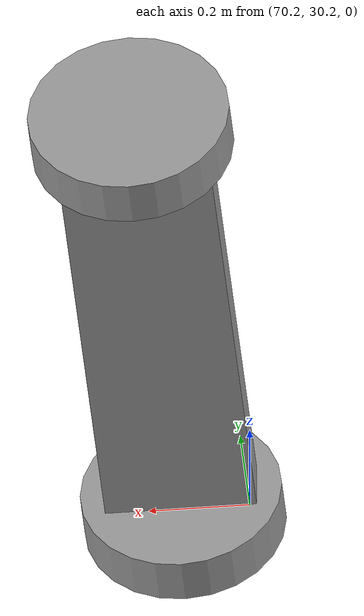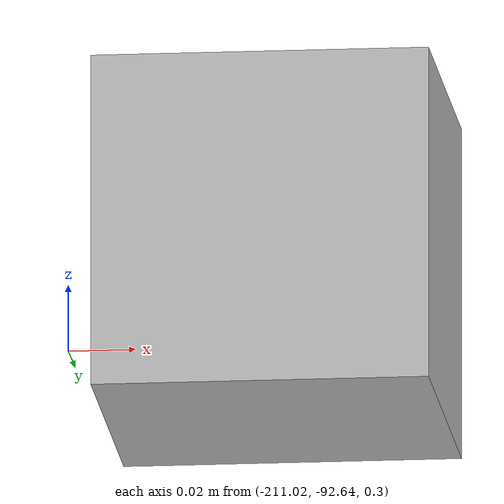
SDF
<?xml version='1.0'?>
<sdf version='1.6'>
  <model name='Robot2'>
    <link name='link_0'>
      <pose frame=''>70.3213 30.8613 -0.097072 0 -0 0</pose>
      <inertial>
        <mass>1</mass>
        <inertia>
          <ixx>0.166667</ixx>
          <ixy>0</ixy>
          <ixz>0</ixz>
          <iyy>0.166667</iyy>
          <iyz>0</iyz>
          <izz>0.166667</izz>
        </inertia>
        <pose frame=''>0 0 0 0 -0 0</pose>
      </inertial>
      <gravity>1</gravity>
      <self_collide>0</self_collide>
      <kinematic>0</kinematic>
      <visual name='visual'>
        <pose frame=''>0 0 0 0 -0 0</pose>
        <geometry>
          <box>
            <size>0.3 1 0.1</size>
          </box>
        </geometry>
        <material>
          <lighting>1</lighting>
          <script>
            <uri>file://media/materials/scripts/gazebo.material</uri>
            <name>Gazebo/Grey</name>
          </script>
          <ambient>0.3 0.3 0.3 1</ambient>
          <diffuse>0.7 0.7 0.7 1</diffuse>
          <specular>0.01 0.01 0.01 1</specular>
          <emissive>0 0 0 1</emissive>
          <shader type='vertex'>
            <normal_map>__default__</normal_map>
          </shader>
        </material>
        <transparency>0</transparency>
        <cast_shadows>1</cast_shadows>
      </visual>
      <collision name='collision'>
        <laser_retro>0</laser_retro>
        <max_contacts>10</max_contacts>
        <pose frame=''>0 0 0 0 -0 0</pose>
        <geometry>
          <box>
            <size>0.3 1 0.1</size>
          </box>
        </geometry>
        <surface>
          <friction>
            <ode>
              <mu>1</mu>
              <mu2>1</mu2>
              <fdir1>0 0 0</fdir1>
              <slip1>0</slip1>
              <slip2>0</slip2>
            </ode>
            <torsional>
              <coefficient>1</coefficient>
              <patch_radius>0</patch_radius>
              <surface_radius>0</surface_radius>
              <use_patch_radius>1</use_patch_radius>
              <ode>
                <slip>0</slip>
              </ode>
            </torsional>
          </friction>
          <bounce>
            <restitution_coefficient>0</restitution_coefficient>
            <threshold>1e+06</threshold>
          </bounce>
          <contact>
            <collide_without_contact>0</collide_without_contact>
            <collide_without_contact_bitmask>1</collide_without_contact_bitmask>
            <collide_bitmask>1</collide_bitmask>
            <ode>
              <soft_cfm>0</soft_cfm>
              <soft_erp>0.2</soft_erp>
              <kp>1e+13</kp>
              <kd>1</kd>
              <max_vel>0.01</max_vel>
              <min_depth>0</min_depth>
            </ode>
            <bullet>
              <split_impulse>1</split_impulse>
              <split_impulse_penetration_threshold>-0.01</split_impulse_penetration_threshold>
              <soft_cfm>0</soft_cfm>
              <soft_erp>0.2</soft_erp>
              <kp>1e+13</kp>
              <kd>1</kd>
            </bullet>
          </contact>
        </surface>
      </collision>
    </link>
    <link name='link_1'>
      <pose frame=''>70.3213 30.3113 -0.097072 1.5707 -0 0</pose>
      <inertial>
        <mass>1</mass>
        <inertia>
          <ixx>0.145833</ixx>
          <ixy>0</ixy>
          <ixz>0</ixz>
          <iyy>0.145833</iyy>
          <iyz>0</iyz>
          <izz>0.125</izz>
        </inertia>
        <pose frame=''>0 0 0 0 -0 0</pose>
      </inertial>
      <gravity>1</gravity>
      <self_collide>0</self_collide>
      <kinematic>0</kinematic>
      <visual name='visual'>
        <pose frame=''>0 0 0 0 -0 0</pose>
        <geometry>
          <cylinder>
            <radius>0.2</radius>
            <length>0.1</length>
          </cylinder>
        </geometry>
        <material>
          <lighting>1</lighting>
          <script>
            <uri>file://media/materials/scripts/gazebo.material</uri>
            <name>Gazebo/Grey</name>
          </script>
          <ambient>0.3 0.3 0.3 1</ambient>
          <diffuse>0.7 0.7 0.7 1</diffuse>
          <specular>0.01 0.01 0.01 1</specular>
          <emissive>0 0 0 1</emissive>
          <shader type='vertex'>
            <normal_map>__default__</normal_map>
          </shader>
        </material>
        <transparency>0</transparency>
        <cast_shadows>1</cast_shadows>
      </visual>
      <collision name='collision'>
        <laser_retro>0</laser_retro>
        <max_contacts>10</max_contacts>
        <pose frame=''>0 0 0 0 -0 0</pose>
        <geometry>
          <cylinder>
            <radius>0.2</radius>
            <length>0.1</length>
          </cylinder>
        </geometry>
        <surface>
          <friction>
            <ode>
              <mu>1</mu>
              <mu2>1</mu2>
              <fdir1>0 0 0</fdir1>
              <slip1>0</slip1>
              <slip2>0</slip2>
            </ode>
            <torsional>
              <coefficient>1</coefficient>
              <patch_radius>0</patch_radius>
              <surface_radius>0</surface_radius>
              <use_patch_radius>1</use_patch_radius>
              <ode>
                <slip>0</slip>
              </ode>
            </torsional>
          </friction>
          <bounce>
            <restitution_coefficient>0</restitution_coefficient>
            <threshold>1e+06</threshold>
          </bounce>
          <contact>
            <collide_without_contact>0</collide_without_contact>
            <collide_without_contact_bitmask>1</collide_without_contact_bitmask>
            <collide_bitmask>1</collide_bitmask>
            <ode>
              <soft_cfm>0</soft_cfm>
              <soft_erp>0.2</soft_erp>
              <kp>1e+13</kp>
              <kd>1</kd>
              <max_vel>0.01</max_vel>
              <min_depth>0</min_depth>
            </ode>
            <bullet>
              <split_impulse>1</split_impulse>
              <split_impulse_penetration_threshold>-0.01</split_impulse_penetration_threshold>
              <soft_cfm>0</soft_cfm>
              <soft_erp>0.2</soft_erp>
              <kp>1e+13</kp>
              <kd>1</kd>
            </bullet>
          </contact>
        </surface>
      </collision>
    </link>
    <link name='link_1_clone'>
      <pose frame=''>70.3213 31.4114 -0.097072 1.5707 -0 0</pose>
      <inertial>
        <mass>1</mass>
        <inertia>
          <ixx>0.145833</ixx>
          <ixy>0</ixy>
          <ixz>0</ixz>
          <iyy>0.145833</iyy>
          <iyz>0</iyz>
          <izz>0.125</izz>
        </inertia>
        <pose frame=''>0 0 0 0 -0 0</pose>
      </inertial>
      <self_collide>0</self_collide>
      <kinematic>0</kinematic>
      <visual name='visual'>
        <pose frame=''>0 0 0 0 -0 0</pose>
        <geometry>
          <cylinder>
            <radius>0.2</radius>
            <length>0.1</length>
          </cylinder>
        </geometry>
        <material>
          <lighting>1</lighting>
          <script>
            <uri>file://media/materials/scripts/gazebo.material</uri>
            <name>Gazebo/Grey</name>
          </script>
          <ambient>0.3 0.3 0.3 1</ambient>
          <diffuse>0.7 0.7 0.7 1</diffuse>
          <specular>0.01 0.01 0.01 1</specular>
          <emissive>0 0 0 1</emissive>
          <shader type='vertex'>
            <normal_map>__default__</normal_map>
          </shader>
        </material>
        <transparency>0</transparency>
        <cast_shadows>1</cast_shadows>
      </visual>
      <collision name='collision'>
        <laser_retro>0</laser_retro>
        <max_contacts>10</max_contacts>
        <pose frame=''>0 0 0 0 -0 0</pose>
        <geometry>
          <cylinder>
            <radius>0.2</radius>
            <length>0.1</length>
          </cylinder>
        </geometry>
        <surface>
          <friction>
            <ode>
              <mu>1</mu>
              <mu2>1</mu2>
              <fdir1>0 0 0</fdir1>
              <slip1>0</slip1>
              <slip2>0</slip2>
            </ode>
            <torsional>
              <coefficient>1</coefficient>
              <patch_radius>0</patch_radius>
              <surface_radius>0</surface_radius>
              <use_patch_radius>1</use_patch_radius>
              <ode>
                <slip>0</slip>
              </ode>
            </torsional>
          </friction>
          <bounce>
            <restitution_coefficient>0</restitution_coefficient>
            <threshold>1e+06</threshold>
          </bounce>
          <contact>
            <collide_without_contact>0</collide_without_contact>
            <collide_without_contact_bitmask>1</collide_without_contact_bitmask>
            <collide_bitmask>1</collide_bitmask>
            <ode>
              <soft_cfm>0</soft_cfm>
              <soft_erp>0.2</soft_erp>
              <kp>1e+13</kp>
              <kd>1</kd>
              <max_vel>0.01</max_vel>
              <min_depth>0</min_depth>
            </ode>
            <bullet>
              <split_impulse>1</split_impulse>
              <split_impulse_penetration_threshold>-0.01</split_impulse_penetration_threshold>
              <soft_cfm>0</soft_cfm>
              <soft_erp>0.2</soft_erp>
              <kp>1e+13</kp>
              <kd>1</kd>
            </bullet>
          </contact>
        </surface>
      </collision>
    </link>
    <model name='depth_camera'>
      <link name='link'>
        <pose frame=''>0 0 0.05 0 -0 0</pose>
        <inertial>
          <mass>0.1</mass>
          <inertia>
            <ixx>0.000166667</ixx>
            <iyy>0.000166667</iyy>
            <izz>0.000166667</izz>
            <ixy>0</ixy>
            <ixz>0</ixz>
            <iyz>0</iyz>
          </inertia>
        </inertial>
        <collision name='collision'>
          <geometry>
            <box>
              <size>0.1 0.1 0.1</size>
            </box>
          </geometry>
        </collision>
        <visual name='visual'>
          <geometry>
            <box>
              <size>0.1 0.1 0.1</size>
            </box>
          </geometry>
        </visual>
        <sensor name='camera' type='depth'>
          <camera name='__default__'>
            <horizontal_fov>1.047</horizontal_fov>
            <image>
              <width>320</width>
              <height>240</height>
            </image>
            <clip>
              <near>0.1</near>
              <far>100</far>
            </clip>
          </camera>
          <always_on>1</always_on>
          <update_rate>30</update_rate>
          <visualize>1</visualize>
        </sensor>
      </link>
      <pose frame=''>-210.964 -92.5844 0.291216 0 -0 0</pose>
    </model>
    <joint name='link_0_JOINT_0' type='revolute'>
      <parent>link_0</parent>
      <child>link_1</child>
      <pose frame=''>0 0 0 0 -0 0</pose>
      <axis>
        <xyz>0 0 1</xyz>
        <use_parent_model_frame>0</use_parent_model_frame>
        <limit>
          <lower>-1.79769e+308</lower>
          <upper>1.79769e+308</upper>
          <effort>-1</effort>
          <velocity>-1</velocity>
        </limit>
        <dynamics>
          <spring_reference>0</spring_reference>
          <spring_stiffness>0</spring_stiffness>
          <damping>0</damping>
        </dynamics>
      </axis>
      <physics>
        <ode>
          <limit>
            <cfm>0</cfm>
            <erp>0.2</erp>
          </limit>
          <suspension>
            <cfm>0</cfm>
            <erp>0.2</erp>
          </suspension>
        </ode>
      </physics>
    </joint>
    <joint name='link_0_JOINT_1' type='revolute'>
      <parent>link_0</parent>
      <child>link_1_clone</child>
      <pose frame=''>0 0 0 0 -0 0</pose>
      <axis>
        <xyz>0 0 1</xyz>
        <use_parent_model_frame>0</use_parent_model_frame>
        <limit>
          <lower>-1.79769e+308</lower>
          <upper>1.79769e+308</upper>
          <effort>-1</effort>
          <velocity>-1</velocity>
        </limit>
        <dynamics>
          <spring_reference>0</spring_reference>
          <spring_stiffness>0</spring_stiffness>
          <damping>0</damping>
        </dynamics>
      </axis>
      <physics>
        <ode>
          <limit>
            <cfm>0</cfm>
            <erp>0.2</erp>
          </limit>
          <suspension>
            <cfm>0</cfm>
            <erp>0.2</erp>
          </suspension>
        </ode>
      </physics>
    </joint>
    <static>0</static>
    <allow_auto_disable>1</allow_auto_disable>
  </model>
</sdf>
